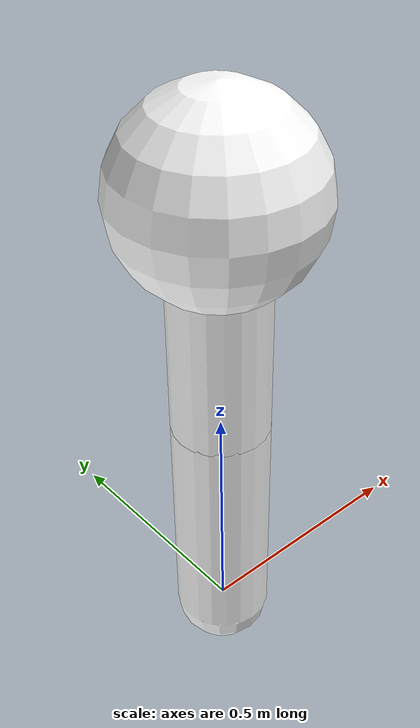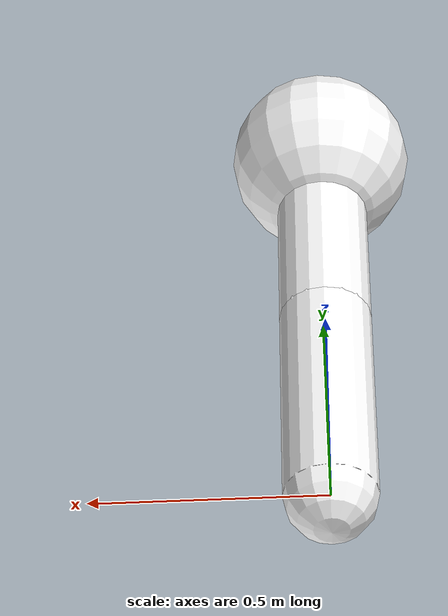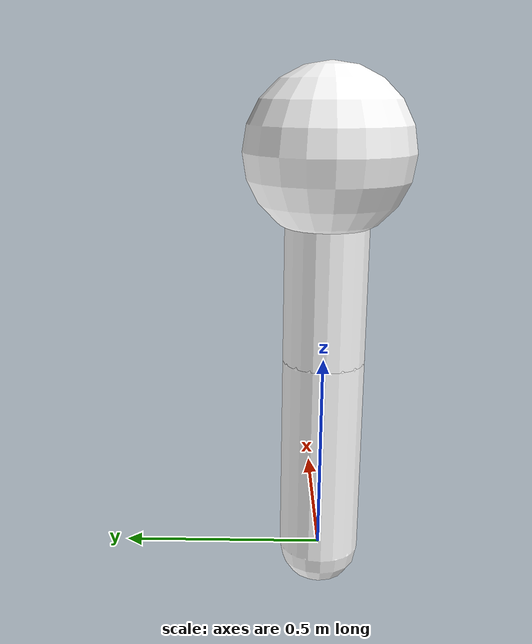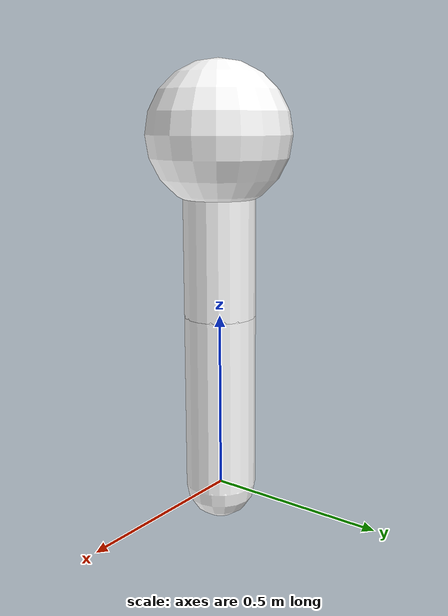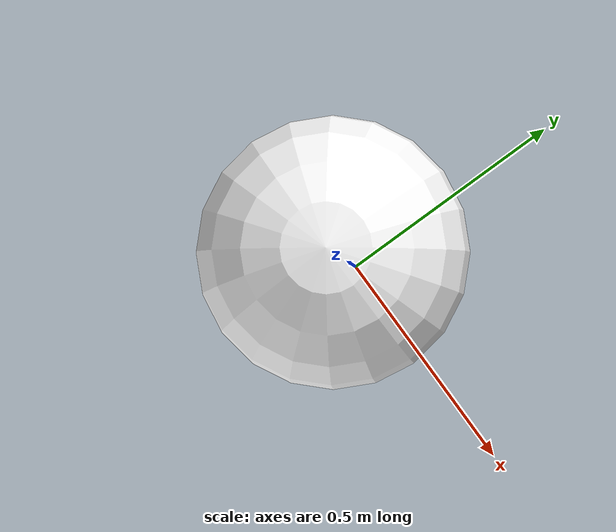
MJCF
<mujoco model="double_cartpole">
  <compiler coordinate="local" inertiafromgeom="true"/>
  <!--  create defaults for joints in cartpole -->
  <default>
    <!-- larger damping values can make sim unstable-->
    <joint damping="0.1"/>
    <!--  two geoms can collide if the contype of one geom is compatible with the con-affinity of another geom and they
    have a common `1` in their 32b representations -->
    <!--    friction = (sliding, rolling, torsional)-->
    <geom contype="3" conaffinity="3" friction="0 0 0" rgba="0.7 0.7 0 1"/>
  </default>
  <!-- time step is physics time step, no separate control time-step -->
  <option gravity="1e-5 0 -9.81" integrator="Euler" timestep="0.05"/>
  <!--  initial size of allocated stack-->
  <size nstack="3000"/>
  <worldbody>
    <!-- Define a camera fixed relative to the static global world-body -->
    <camera name="rgb" mode="fixed" pos="0.0 -4 0.0" euler="90 0 0"/>
    <body name="cart" pos="0 0 0">
      <!--      the actuated joint which we call slider-->
      <!--      margin is distance below which contacts become active. Implements notion of "soft contact" -->
      <joint name="slider" axis="1 0 0" limited="true" margin="0.01" pos="0 0 0" range="-100 100" type="slide"/>
      <!--      small sized cart (alpha=0) with orientation chosen such that we look at the planar object head on -->
      <geom name="gcart" type="capsule" pos="0 0 0" quat="0.707 0 0.707 0 " rgba="1 1 1 0" size="0.01 0.01" mass="1."/>
      <body name="pole1" pos="0 0 0">
        <joint axis="0 1 0" name="hinge" pos="0 0 0" type="hinge" stiffness="0"/>
<!--        when fromto is used, size is just radius of hemi-sphere caps, and orientation is implicit in fromto-->
        <geom name="gpole1" type="capsule" fromto="0 0 0 0 0 0.5" rgba="1 1 1 1" size="0.1" mass="0.5" contype="2"/>
        <body name="pole2" pos="0 0 0.5">
<!--          Create a tiny site at the location of hinge2 to retreive its x and y coordinate later-->
          <site name="hinge2" pos="0 0 0." size="0.01 0.01"/>
          <joint axis="0 1 0" name="hinge2" pos="0 0 0" type="hinge"/>
          <geom name="gpole2" type="capsule" fromto="0 0 0 0 0 0.5" rgba="1 1 1 1" size="0.1" mass="0.5" contype="1"/>
           <body name="mass" pos="0 0 0.5">
            <geom name="gmass" type="sphere" size="0.2 0.2" mass="0" rgba="1 1 1 1" contype="3" conaffinity="3"/>
           </body>
        </body>
      </body>
    </body>
  </worldbody>
  <actuator>
    <motor joint="slider" name="slide" ctrllimited="true" ctrlrange="-1 1" gear="40"/>
  </actuator>
</mujoco>
